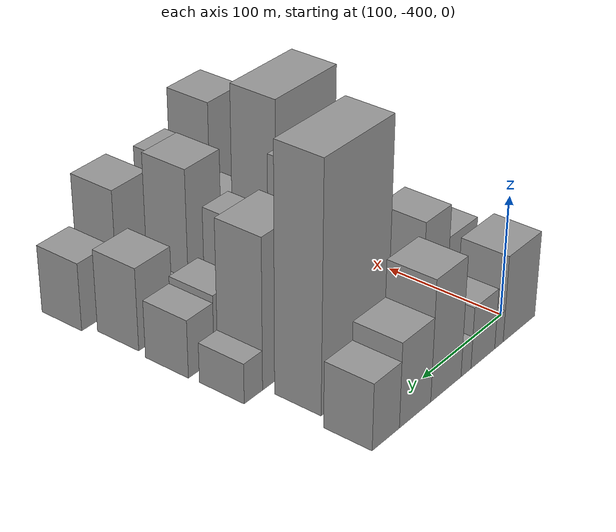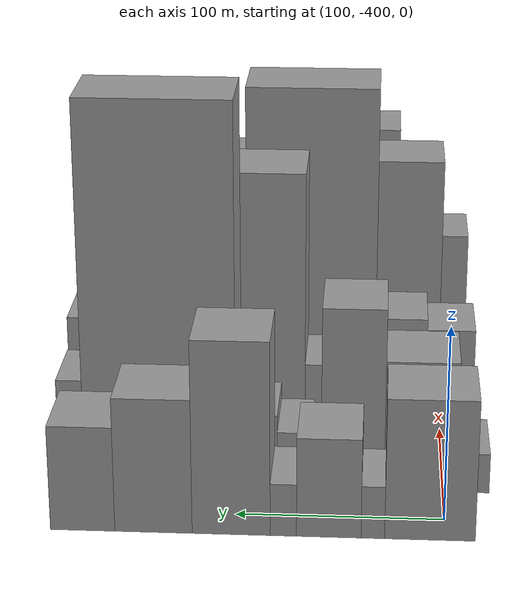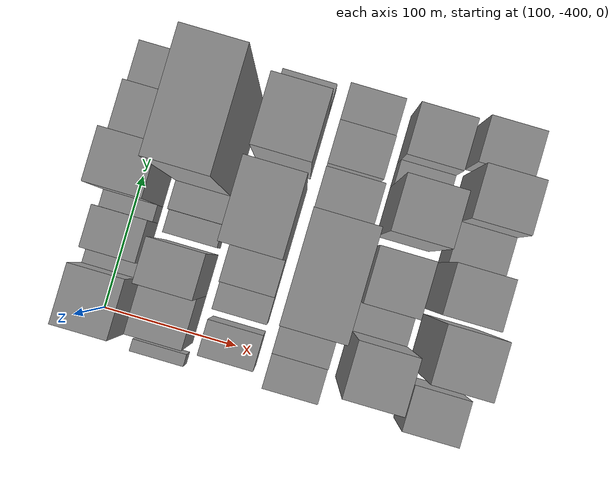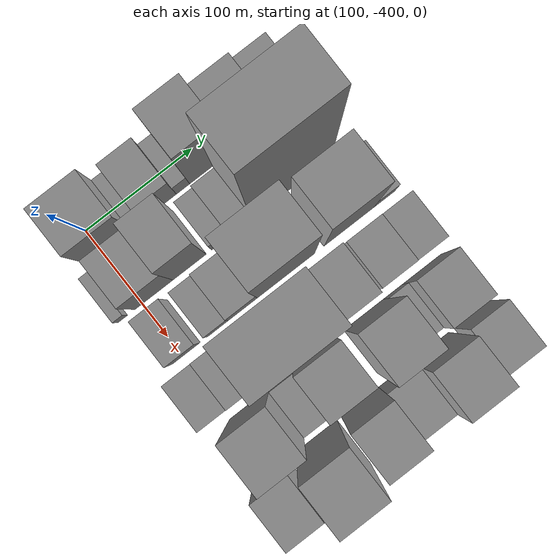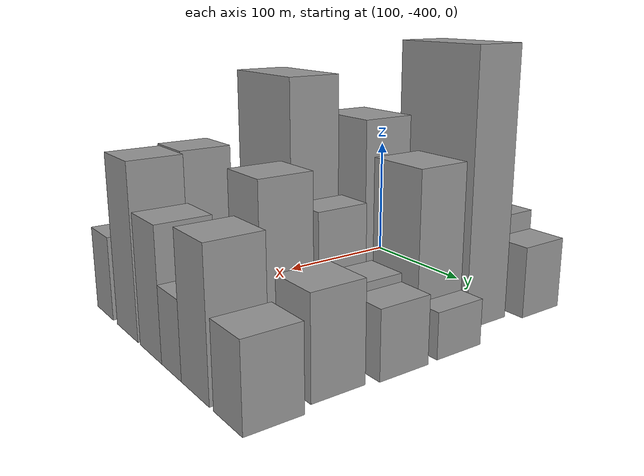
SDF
<sdf version="1.6">
 <world name="default">
  <model name="building_12">
   <static>1</static>
   <pose>100.0000 -392.6815 0 0.000000 0.000000 0.000000</pose>
   <link name="link">
    <pose>0 0 36.00 0 0 0</pose>
    <collision name="collision"><geometry><box><size>40.0000 42.4365 72.0000</size></box></geometry></collision>
    <visual name="visual">
     <cast_shadows>0</cast_shadows>
     <geometry><box><size>40.0000 42.4365 72.0000</size></box></geometry>
     <material>
      <script>
       <uri>model://grey_wall/materials/scripts</uri>
       <uri>model://grey_wall/materials/textures</uri>
       <name>vrc/grey_wall</name>
      </script>
     </material>
    </visual>
   </link>
  </model>
  <model name="building_13">
   <static>1</static>
   <pose>100.0000 -365.9398 0 0.000000 0.000000 0.000000</pose>
   <link name="link">
    <pose>0 0 13.50 0 0 0</pose>
    <collision name="collision"><geometry><box><size>40.0000 11.0469 27.0000</size></box></geometry></collision>
    <visual name="visual">
     <cast_shadows>0</cast_shadows>
     <geometry><box><size>40.0000 11.0469 27.0000</size></box></geometry>
     <material>
      <script>
       <uri>model://grey_wall/materials/scripts</uri>
       <uri>model://grey_wall/materials/textures</uri>
       <name>vrc/grey_wall</name>
      </script>
     </material>
    </visual>
   </link>
  </model>
  <model name="building_14">
   <static>1</static>
   <pose>100.0000 -345.2138 0 0.000000 0.000000 0.000000</pose>
   <link name="link">
    <pose>0 0 25.50 0 0 0</pose>
    <collision name="collision"><geometry><box><size>40.0000 30.4052 51.0000</size></box></geometry></collision>
    <visual name="visual">
     <cast_shadows>0</cast_shadows>
     <geometry><box><size>40.0000 30.4052 51.0000</size></box></geometry>
     <material>
      <script>
       <uri>model://grey_wall/materials/scripts</uri>
       <uri>model://grey_wall/materials/textures</uri>
       <name>vrc/grey_wall</name>
      </script>
     </material>
    </visual>
   </link>
  </model>
  <model name="building_15">
   <static>1</static>
   <pose>100.0000 -323.7918 0 0.000000 0.000000 0.000000</pose>
   <link name="link">
    <pose>0 0 13.50 0 0 0</pose>
    <collision name="collision"><geometry><box><size>40.0000 12.4387 27.0000</size></box></geometry></collision>
    <visual name="visual">
     <cast_shadows>0</cast_shadows>
     <geometry><box><size>40.0000 12.4387 27.0000</size></box></geometry>
     <material>
      <script>
       <uri>model://grey_wall/materials/scripts</uri>
       <uri>model://grey_wall/materials/textures</uri>
       <name>vrc/grey_wall</name>
      </script>
     </material>
    </visual>
   </link>
  </model>
  <model name="building_16">
   <static>1</static>
   <pose>100.0000 -299.1559 0 0.000000 0.000000 0.000000</pose>
   <link name="link">
    <pose>0 0 49.50 0 0 0</pose>
    <collision name="collision"><geometry><box><size>40.0000 36.8331 99.0000</size></box></geometry></collision>
    <visual name="visual">
     <cast_shadows>0</cast_shadows>
     <geometry><box><size>40.0000 36.8331 99.0000</size></box></geometry>
     <material>
      <script>
       <uri>model://grey_wall/materials/scripts</uri>
       <uri>model://grey_wall/materials/textures</uri>
       <name>vrc/grey_wall</name>
      </script>
     </material>
    </visual>
   </link>
  </model>
  <model name="building_17">
   <static>1</static>
   <pose>100.0000 -262.3806 0 0.000000 0.000000 0.000000</pose>
   <link name="link">
    <pose>0 0 34.50 0 0 0</pose>
    <collision name="collision"><geometry><box><size>40.0000 36.7175 69.0000</size></box></geometry></collision>
    <visual name="visual">
     <cast_shadows>0</cast_shadows>
     <geometry><box><size>40.0000 36.7175 69.0000</size></box></geometry>
     <material>
      <script>
       <uri>model://grey_wall/materials/scripts</uri>
       <uri>model://grey_wall/materials/textures</uri>
       <name>vrc/grey_wall</name>
      </script>
     </material>
    </visual>
   </link>
  </model>
  <model name="building_18">
   <static>1</static>
   <pose>100.0000 -228.6835 0 0.000000 0.000000 0.000000</pose>
   <link name="link">
    <pose>0 0 27.00 0 0 0</pose>
    <collision name="collision"><geometry><box><size>40.0000 30.6767 54.0000</size></box></geometry></collision>
    <visual name="visual">
     <cast_shadows>0</cast_shadows>
     <geometry><box><size>40.0000 30.6767 54.0000</size></box></geometry>
     <material>
      <script>
       <uri>model://grey_wall/materials/scripts</uri>
       <uri>model://grey_wall/materials/textures</uri>
       <name>vrc/grey_wall</name>
      </script>
     </material>
    </visual>
   </link>
  </model>
  <model name="building_61">
   <static>1</static>
   <pose>149.0000 -418.1345 0 0.000000 0.000000 0.000000</pose>
   <link name="link">
    <pose>0 0 10.50 0 0 0</pose>
    <collision name="collision"><geometry><box><size>40.0000 8.9210 21.0000</size></box></geometry></collision>
    <visual name="visual">
     <cast_shadows>0</cast_shadows>
     <geometry><box><size>40.0000 8.9210 21.0000</size></box></geometry>
     <material>
      <script>
       <uri>model://grey_wall/materials/scripts</uri>
       <uri>model://grey_wall/materials/textures</uri>
       <name>vrc/grey_wall</name>
      </script>
     </material>
    </visual>
   </link>
  </model>
  <model name="building_62">
   <static>1</static>
   <pose>149.0000 -388.8332 0 0.000000 0.000000 0.000000</pose>
   <link name="link">
    <pose>0 0 34.50 0 0 0</pose>
    <collision name="collision"><geometry><box><size>40.0000 35.6817 69.0000</size></box></geometry></collision>
    <visual name="visual">
     <cast_shadows>0</cast_shadows>
     <geometry><box><size>40.0000 35.6817 69.0000</size></box></geometry>
     <material>
      <script>
       <uri>model://grey_wall/materials/scripts</uri>
       <uri>model://grey_wall/materials/textures</uri>
       <name>vrc/grey_wall</name>
      </script>
     </material>
    </visual>
   </link>
  </model>
  <model name="building_63">
   <static>1</static>
   <pose>149.0000 -355.4125 0 0.000000 0.000000 0.000000</pose>
   <link name="link">
    <pose>0 0 48.00 0 0 0</pose>
    <collision name="collision"><geometry><box><size>40.0000 31.1596 96.0000</size></box></geometry></collision>
    <visual name="visual">
     <cast_shadows>0</cast_shadows>
     <geometry><box><size>40.0000 31.1596 96.0000</size></box></geometry>
     <material>
      <script>
       <uri>model://grey_wall/materials/scripts</uri>
       <uri>model://grey_wall/materials/textures</uri>
       <name>vrc/grey_wall</name>
      </script>
     </material>
    </visual>
   </link>
  </model>
  <model name="building_64">
   <static>1</static>
   <pose>149.0000 -326.5224 0 0.000000 0.000000 0.000000</pose>
   <link name="link">
    <pose>0 0 15.00 0 0 0</pose>
    <collision name="collision"><geometry><box><size>40.0000 16.6204 30.0000</size></box></geometry></collision>
    <visual name="visual">
     <cast_shadows>0</cast_shadows>
     <geometry><box><size>40.0000 16.6204 30.0000</size></box></geometry>
     <material>
      <script>
       <uri>model://grey_wall/materials/scripts</uri>
       <uri>model://grey_wall/materials/textures</uri>
       <name>vrc/grey_wall</name>
      </script>
     </material>
    </visual>
   </link>
  </model>
  <model name="building_65">
   <static>1</static>
   <pose>149.0000 -307.9409 0 0.000000 0.000000 0.000000</pose>
   <link name="link">
    <pose>0 0 19.50 0 0 0</pose>
    <collision name="collision"><geometry><box><size>40.0000 20.5426 39.0000</size></box></geometry></collision>
    <visual name="visual">
     <cast_shadows>0</cast_shadows>
     <geometry><box><size>40.0000 20.5426 39.0000</size></box></geometry>
     <material>
      <script>
       <uri>model://grey_wall/materials/scripts</uri>
       <uri>model://grey_wall/materials/textures</uri>
       <name>vrc/grey_wall</name>
      </script>
     </material>
    </visual>
   </link>
  </model>
  <model name="building_66">
   <static>1</static>
   <pose>149.0000 -260.0572 0 0.000000 0.000000 0.000000</pose>
   <link name="link">
    <pose>0 0 99.00 0 0 0</pose>
    <collision name="collision"><geometry><box><size>40.0000 75.2248 198.0000</size></box></geometry></collision>
    <visual name="visual">
     <cast_shadows>0</cast_shadows>
     <geometry><box><size>40.0000 75.2248 198.0000</size></box></geometry>
     <material>
      <script>
       <uri>model://grey_wall/materials/scripts</uri>
       <uri>model://grey_wall/materials/textures</uri>
       <name>vrc/grey_wall</name>
      </script>
     </material>
    </visual>
   </link>
  </model>
  <model name="building_107">
   <static>1</static>
   <pose>198.0000 -396.4228 0 0.000000 0.000000 0.000000</pose>
   <link name="link">
    <pose>0 0 22.50 0 0 0</pose>
    <collision name="collision"><geometry><box><size>40.0000 25.8854 45.0000</size></box></geometry></collision>
    <visual name="visual">
     <cast_shadows>0</cast_shadows>
     <geometry><box><size>40.0000 25.8854 45.0000</size></box></geometry>
     <material>
      <script>
       <uri>model://grey_wall/materials/scripts</uri>
       <uri>model://grey_wall/materials/textures</uri>
       <name>vrc/grey_wall</name>
      </script>
     </material>
    </visual>
   </link>
  </model>
  <model name="building_108">
   <static>1</static>
   <pose>198.0000 -366.4644 0 0.000000 0.000000 0.000000</pose>
   <link name="link">
    <pose>0 0 18.00 0 0 0</pose>
    <collision name="collision"><geometry><box><size>40.0000 20.0315 36.0000</size></box></geometry></collision>
    <visual name="visual">
     <cast_shadows>0</cast_shadows>
     <geometry><box><size>40.0000 20.0315 36.0000</size></box></geometry>
     <material>
      <script>
       <uri>model://grey_wall/materials/scripts</uri>
       <uri>model://grey_wall/materials/textures</uri>
       <name>vrc/grey_wall</name>
      </script>
     </material>
    </visual>
   </link>
  </model>
  <model name="building_109">
   <static>1</static>
   <pose>198.0000 -343.0981 0 0.000000 0.000000 0.000000</pose>
   <link name="link">
    <pose>0 0 22.50 0 0 0</pose>
    <collision name="collision"><geometry><box><size>40.0000 26.7010 45.0000</size></box></geometry></collision>
    <visual name="visual">
     <cast_shadows>0</cast_shadows>
     <geometry><box><size>40.0000 26.7010 45.0000</size></box></geometry>
     <material>
      <script>
       <uri>model://grey_wall/materials/scripts</uri>
       <uri>model://grey_wall/materials/textures</uri>
       <name>vrc/grey_wall</name>
      </script>
     </material>
    </visual>
   </link>
  </model>
  <model name="building_110">
   <static>1</static>
   <pose>198.0000 -303.1394 0 0.000000 0.000000 0.000000</pose>
   <link name="link">
    <pose>0 0 73.50 0 0 0</pose>
    <collision name="collision"><geometry><box><size>40.0000 53.2164 147.0000</size></box></geometry></collision>
    <visual name="visual">
     <cast_shadows>0</cast_shadows>
     <geometry><box><size>40.0000 53.2164 147.0000</size></box></geometry>
     <material>
      <script>
       <uri>model://grey_wall/materials/scripts</uri>
       <uri>model://grey_wall/materials/textures</uri>
       <name>vrc/grey_wall</name>
      </script>
     </material>
    </visual>
   </link>
  </model>
  <model name="building_111">
   <static>1</static>
   <pose>198.0000 -244.0218 0 0.000000 0.000000 0.000000</pose>
   <link name="link">
    <pose>0 0 61.50 0 0 0</pose>
    <collision name="collision"><geometry><box><size>40.0000 47.0189 123.0000</size></box></geometry></collision>
    <visual name="visual">
     <cast_shadows>0</cast_shadows>
     <geometry><box><size>40.0000 47.0189 123.0000</size></box></geometry>
     <material>
      <script>
       <uri>model://grey_wall/materials/scripts</uri>
       <uri>model://grey_wall/materials/textures</uri>
       <name>vrc/grey_wall</name>
      </script>
     </material>
    </visual>
   </link>
  </model>
  <model name="building_112">
   <static>1</static>
   <pose>198.0000 -210.6333 0 0.000000 0.000000 0.000000</pose>
   <link name="link">
    <pose>0 0 16.50 0 0 0</pose>
    <collision name="collision"><geometry><box><size>40.0000 19.7582 33.0000</size></box></geometry></collision>
    <visual name="visual">
     <cast_shadows>0</cast_shadows>
     <geometry><box><size>40.0000 19.7582 33.0000</size></box></geometry>
     <material>
      <script>
       <uri>model://grey_wall/materials/scripts</uri>
       <uri>model://grey_wall/materials/textures</uri>
       <name>vrc/grey_wall</name>
      </script>
     </material>
    </visual>
   </link>
  </model>
  <model name="building_158">
   <static>1</static>
   <pose>247.0000 -405.7730 0 0.000000 0.000000 0.000000</pose>
   <link name="link">
    <pose>0 0 22.50 0 0 0</pose>
    <collision name="collision"><geometry><box><size>40.0000 25.5367 45.0000</size></box></geometry></collision>
    <visual name="visual">
     <cast_shadows>0</cast_shadows>
     <geometry><box><size>40.0000 25.5367 45.0000</size></box></geometry>
     <material>
      <script>
       <uri>model://grey_wall/materials/scripts</uri>
       <uri>model://grey_wall/materials/textures</uri>
       <name>vrc/grey_wall</name>
      </script>
     </material>
    </visual>
   </link>
  </model>
  <model name="building_159">
   <static>1</static>
   <pose>247.0000 -379.1604 0 0.000000 0.000000 0.000000</pose>
   <link name="link">
    <pose>0 0 25.50 0 0 0</pose>
    <collision name="collision"><geometry><box><size>40.0000 27.6885 51.0000</size></box></geometry></collision>
    <visual name="visual">
     <cast_shadows>0</cast_shadows>
     <geometry><box><size>40.0000 27.6885 51.0000</size></box></geometry>
     <material>
      <script>
       <uri>model://grey_wall/materials/scripts</uri>
       <uri>model://grey_wall/materials/textures</uri>
       <name>vrc/grey_wall</name>
      </script>
     </material>
    </visual>
   </link>
  </model>
  <model name="building_160">
   <static>1</static>
   <pose>247.0000 -330.8500 0 0.000000 0.000000 0.000000</pose>
   <link name="link">
    <pose>0 0 88.50 0 0 0</pose>
    <collision name="collision"><geometry><box><size>40.0000 68.9324 177.0000</size></box></geometry></collision>
    <visual name="visual">
     <cast_shadows>0</cast_shadows>
     <geometry><box><size>40.0000 68.9324 177.0000</size></box></geometry>
     <material>
      <script>
       <uri>model://grey_wall/materials/scripts</uri>
       <uri>model://grey_wall/materials/textures</uri>
       <name>vrc/grey_wall</name>
      </script>
     </material>
    </visual>
   </link>
  </model>
  <model name="building_161">
   <static>1</static>
   <pose>247.0000 -278.2361 0 0.000000 0.000000 0.000000</pose>
   <link name="link">
    <pose>0 0 46.50 0 0 0</pose>
    <collision name="collision"><geometry><box><size>40.0000 28.2955 93.0000</size></box></geometry></collision>
    <visual name="visual">
     <cast_shadows>0</cast_shadows>
     <geometry><box><size>40.0000 28.2955 93.0000</size></box></geometry>
     <material>
      <script>
       <uri>model://grey_wall/materials/scripts</uri>
       <uri>model://grey_wall/materials/textures</uri>
       <name>vrc/grey_wall</name>
      </script>
     </material>
    </visual>
   </link>
  </model>
  <model name="building_162">
   <static>1</static>
   <pose>247.0000 -242.5583 0 0.000000 0.000000 0.000000</pose>
   <link name="link">
    <pose>0 0 27.00 0 0 0</pose>
    <collision name="collision"><geometry><box><size>40.0000 31.0600 54.0000</size></box></geometry></collision>
    <visual name="visual">
     <cast_shadows>0</cast_shadows>
     <geometry><box><size>40.0000 31.0600 54.0000</size></box></geometry>
     <material>
      <script>
       <uri>model://grey_wall/materials/scripts</uri>
       <uri>model://grey_wall/materials/textures</uri>
       <name>vrc/grey_wall</name>
      </script>
     </material>
    </visual>
   </link>
  </model>
  <model name="building_163">
   <static>1</static>
   <pose>247.0000 -213.3095 0 0.000000 0.000000 0.000000</pose>
   <link name="link">
    <pose>0 0 24.00 0 0 0</pose>
    <collision name="collision"><geometry><box><size>40.0000 27.4376 48.0000</size></box></geometry></collision>
    <visual name="visual">
     <cast_shadows>0</cast_shadows>
     <geometry><box><size>40.0000 27.4376 48.0000</size></box></geometry>
     <material>
      <script>
       <uri>model://grey_wall/materials/scripts</uri>
       <uri>model://grey_wall/materials/textures</uri>
       <name>vrc/grey_wall</name>
      </script>
     </material>
    </visual>
   </link>
  </model>
  <model name="building_211">
   <static>1</static>
   <pose>296.0000 -382.2843 0 0.000000 0.000000 0.000000</pose>
   <link name="link">
    <pose>0 0 61.50 0 0 0</pose>
    <collision name="collision"><geometry><box><size>40.0000 37.3118 123.0000</size></box></geometry></collision>
    <visual name="visual">
     <cast_shadows>0</cast_shadows>
     <geometry><box><size>40.0000 37.3118 123.0000</size></box></geometry>
     <material>
      <script>
       <uri>model://grey_wall/materials/scripts</uri>
       <uri>model://grey_wall/materials/textures</uri>
       <name>vrc/grey_wall</name>
      </script>
     </material>
    </visual>
   </link>
  </model>
  <model name="building_212">
   <static>1</static>
   <pose>296.0000 -353.0375 0 0.000000 0.000000 0.000000</pose>
   <link name="link">
    <pose>0 0 18.00 0 0 0</pose>
    <collision name="collision"><geometry><box><size>40.0000 21.1818 36.0000</size></box></geometry></collision>
    <visual name="visual">
     <cast_shadows>0</cast_shadows>
     <geometry><box><size>40.0000 21.1818 36.0000</size></box></geometry>
     <material>
      <script>
       <uri>model://grey_wall/materials/scripts</uri>
       <uri>model://grey_wall/materials/textures</uri>
       <name>vrc/grey_wall</name>
      </script>
     </material>
    </visual>
   </link>
  </model>
  <model name="building_213">
   <static>1</static>
   <pose>296.0000 -322.3124 0 0.000000 0.000000 0.000000</pose>
   <link name="link">
    <pose>0 0 34.50 0 0 0</pose>
    <collision name="collision"><geometry><box><size>40.0000 40.2683 69.0000</size></box></geometry></collision>
    <visual name="visual">
     <cast_shadows>0</cast_shadows>
     <geometry><box><size>40.0000 40.2683 69.0000</size></box></geometry>
     <material>
      <script>
       <uri>model://grey_wall/materials/scripts</uri>
       <uri>model://grey_wall/materials/textures</uri>
       <name>vrc/grey_wall</name>
      </script>
     </material>
    </visual>
   </link>
  </model>
  <model name="building_214">
   <static>1</static>
   <pose>296.0000 -275.5462 0 0.000000 0.000000 0.000000</pose>
   <link name="link">
    <pose>0 0 61.50 0 0 0</pose>
    <collision name="collision"><geometry><box><size>40.0000 37.2642 123.0000</size></box></geometry></collision>
    <visual name="visual">
     <cast_shadows>0</cast_shadows>
     <geometry><box><size>40.0000 37.2642 123.0000</size></box></geometry>
     <material>
      <script>
       <uri>model://grey_wall/materials/scripts</uri>
       <uri>model://grey_wall/materials/textures</uri>
       <name>vrc/grey_wall</name>
      </script>
     </material>
    </visual>
   </link>
  </model>
  <model name="building_215">
   <static>1</static>
   <pose>296.0000 -247.9790 0 0.000000 0.000000 0.000000</pose>
   <link name="link">
    <pose>0 0 16.50 0 0 0</pose>
    <collision name="collision"><geometry><box><size>40.0000 17.8702 33.0000</size></box></geometry></collision>
    <visual name="visual">
     <cast_shadows>0</cast_shadows>
     <geometry><box><size>40.0000 17.8702 33.0000</size></box></geometry>
     <material>
      <script>
       <uri>model://grey_wall/materials/scripts</uri>
       <uri>model://grey_wall/materials/textures</uri>
       <name>vrc/grey_wall</name>
      </script>
     </material>
    </visual>
   </link>
  </model>
  <model name="building_216">
   <static>1</static>
   <pose>296.0000 -220.7548 0 0.000000 0.000000 0.000000</pose>
   <link name="link">
    <pose>0 0 34.50 0 0 0</pose>
    <collision name="collision"><geometry><box><size>40.0000 36.5781 69.0000</size></box></geometry></collision>
    <visual name="visual">
     <cast_shadows>0</cast_shadows>
     <geometry><box><size>40.0000 36.5781 69.0000</size></box></geometry>
     <material>
      <script>
       <uri>model://grey_wall/materials/scripts</uri>
       <uri>model://grey_wall/materials/textures</uri>
       <name>vrc/grey_wall</name>
      </script>
     </material>
    </visual>
   </link>
  </model>
  <model name="building_258">
   <static>1</static>
   <pose>345.0000 -401.3272 0 0.000000 0.000000 0.000000</pose>
   <link name="link">
    <pose>0 0 31.50 0 0 0</pose>
    <collision name="collision"><geometry><box><size>40.0000 32.2864 63.0000</size></box></geometry></collision>
    <visual name="visual">
     <cast_shadows>0</cast_shadows>
     <geometry><box><size>40.0000 32.2864 63.0000</size></box></geometry>
     <material>
      <script>
       <uri>model://grey_wall/materials/scripts</uri>
       <uri>model://grey_wall/materials/textures</uri>
       <name>vrc/grey_wall</name>
      </script>
     </material>
    </visual>
   </link>
  </model>
  <model name="building_259">
   <static>1</static>
   <pose>345.0000 -358.0312 0 0.000000 0.000000 0.000000</pose>
   <link name="link">
    <pose>0 0 63.00 0 0 0</pose>
    <collision name="collision"><geometry><box><size>40.0000 38.3057 126.0000</size></box></geometry></collision>
    <visual name="visual">
     <cast_shadows>0</cast_shadows>
     <geometry><box><size>40.0000 38.3057 126.0000</size></box></geometry>
     <material>
      <script>
       <uri>model://grey_wall/materials/scripts</uri>
       <uri>model://grey_wall/materials/textures</uri>
       <name>vrc/grey_wall</name>
      </script>
     </material>
    </visual>
   </link>
  </model>
  <model name="building_260">
   <static>1</static>
   <pose>345.0000 -317.3519 0 0.000000 0.000000 0.000000</pose>
   <link name="link">
    <pose>0 0 46.50 0 0 0</pose>
    <collision name="collision"><geometry><box><size>40.0000 35.0529 93.0000</size></box></geometry></collision>
    <visual name="visual">
     <cast_shadows>0</cast_shadows>
     <geometry><box><size>40.0000 35.0529 93.0000</size></box></geometry>
     <material>
      <script>
       <uri>model://grey_wall/materials/scripts</uri>
       <uri>model://grey_wall/materials/textures</uri>
       <name>vrc/grey_wall</name>
      </script>
     </material>
    </visual>
   </link>
  </model>
  <model name="building_261">
   <static>1</static>
   <pose>345.0000 -285.2623 0 0.000000 0.000000 0.000000</pose>
   <link name="link">
    <pose>0 0 27.00 0 0 0</pose>
    <collision name="collision"><geometry><box><size>40.0000 29.1263 54.0000</size></box></geometry></collision>
    <visual name="visual">
     <cast_shadows>0</cast_shadows>
     <geometry><box><size>40.0000 29.1263 54.0000</size></box></geometry>
     <material>
      <script>
       <uri>model://grey_wall/materials/scripts</uri>
       <uri>model://grey_wall/materials/textures</uri>
       <name>vrc/grey_wall</name>
      </script>
     </material>
    </visual>
   </link>
  </model>
  <model name="building_262">
   <static>1</static>
   <pose>345.0000 -252.2790 0 0.000000 0.000000 0.000000</pose>
   <link name="link">
    <pose>0 0 49.50 0 0 0</pose>
    <collision name="collision"><geometry><box><size>40.0000 36.8403 99.0000</size></box></geometry></collision>
    <visual name="visual">
     <cast_shadows>0</cast_shadows>
     <geometry><box><size>40.0000 36.8403 99.0000</size></box></geometry>
     <material>
      <script>
       <uri>model://grey_wall/materials/scripts</uri>
       <uri>model://grey_wall/materials/textures</uri>
       <name>vrc/grey_wall</name>
      </script>
     </material>
    </visual>
   </link>
  </model>
  <model name="building_263">
   <static>1</static>
   <pose>345.0000 -212.1894 0 0.000000 0.000000 0.000000</pose>
   <link name="link">
    <pose>0 0 28.50 0 0 0</pose>
    <collision name="collision"><geometry><box><size>40.0000 33.3389 57.0000</size></box></geometry></collision>
    <visual name="visual">
     <cast_shadows>0</cast_shadows>
     <geometry><box><size>40.0000 33.3389 57.0000</size></box></geometry>
     <material>
      <script>
       <uri>model://grey_wall/materials/scripts</uri>
       <uri>model://grey_wall/materials/textures</uri>
       <name>vrc/grey_wall</name>
      </script>
     </material>
    </visual>
   </link>
  </model>
 </world>
</sdf>
